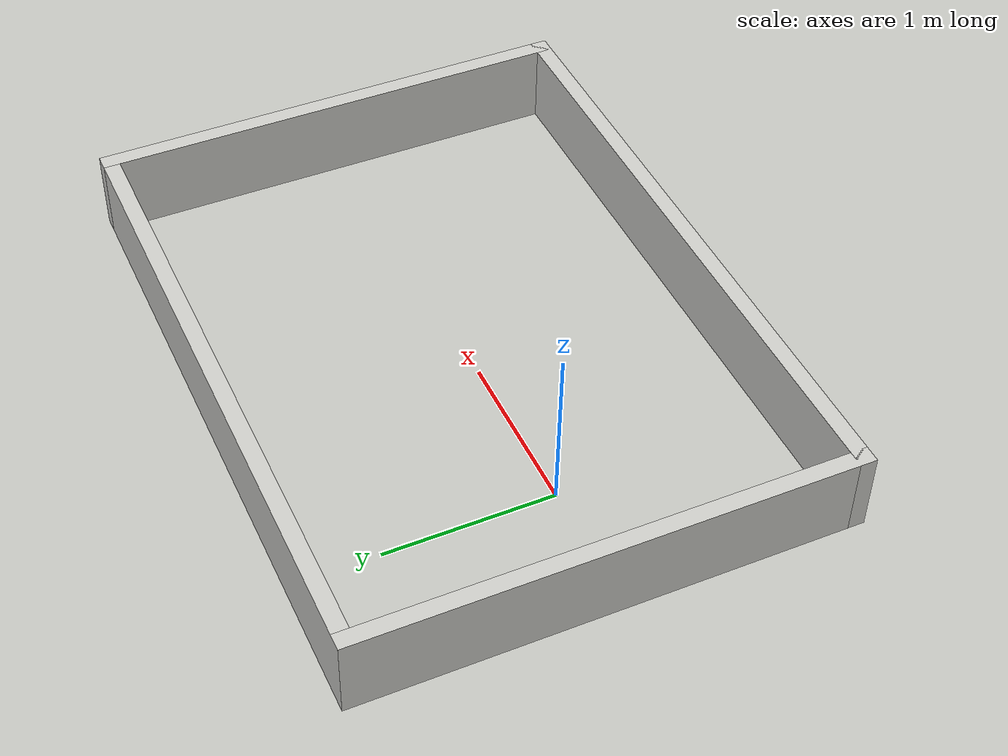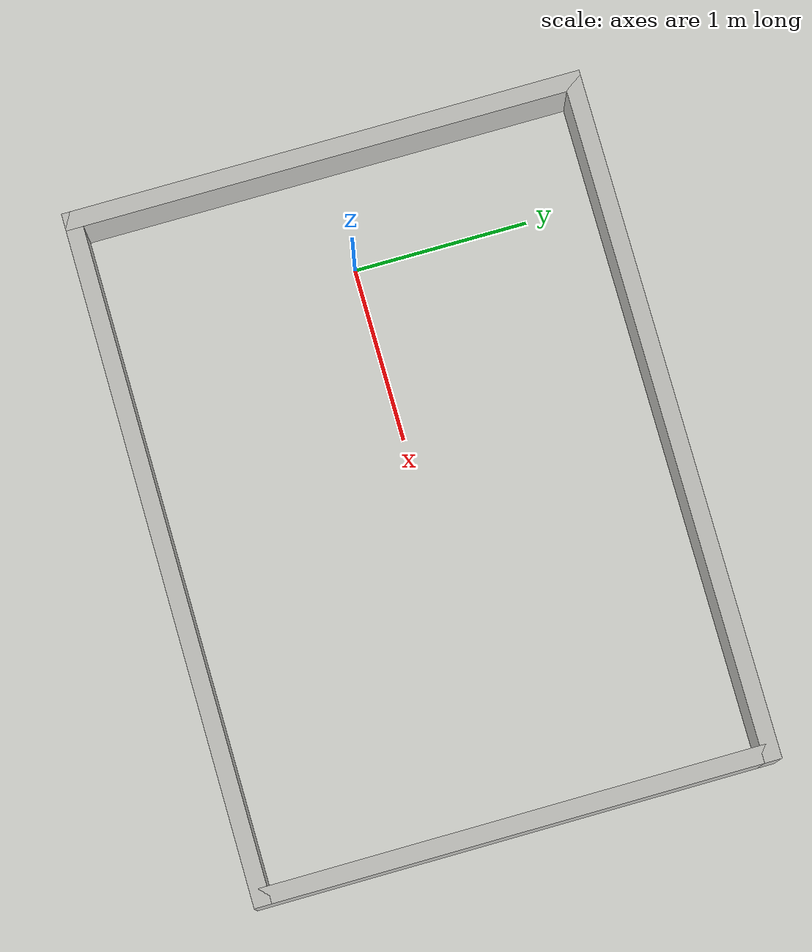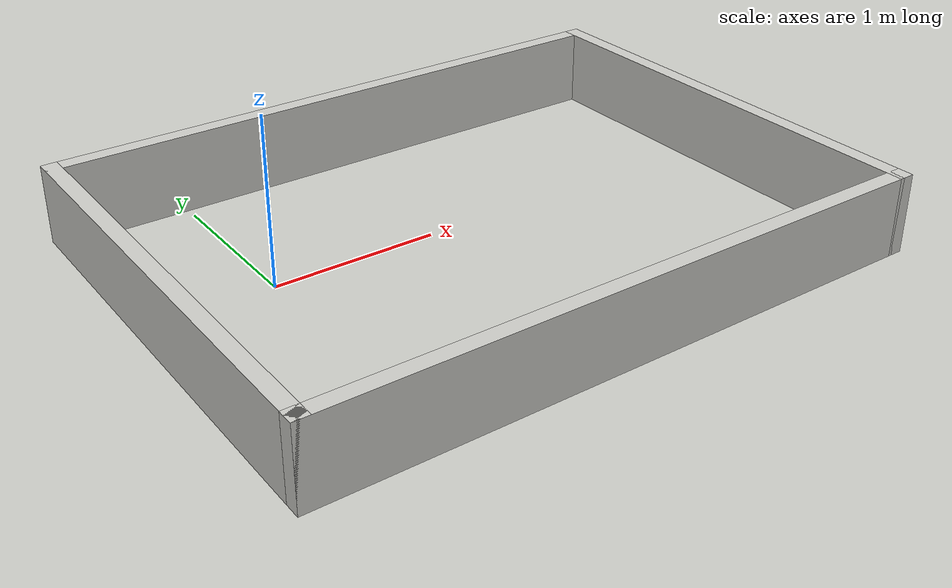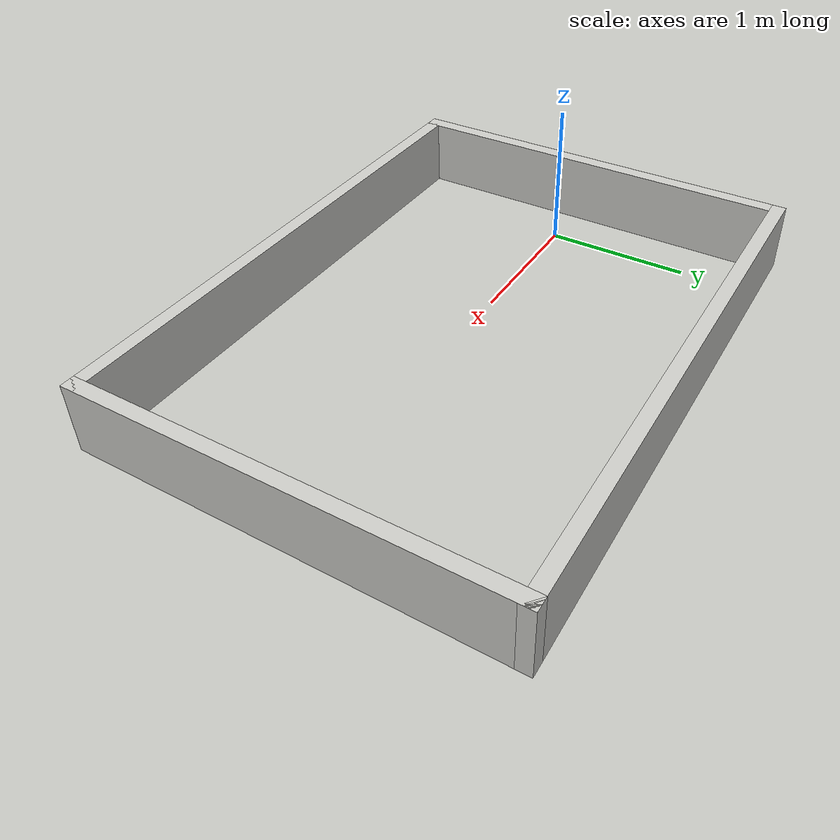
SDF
<?xml version="1.0" ?>
<sdf version="1.4">
  <world name="underwater">
    <include>
      <uri>model://sun</uri>
    </include>

    <!-- Testing Pond model -->

      <model name='testing_pond'>
      <pose frame=''>1.3 0 -0.3 0 0 0</pose>
      <link name='Wall_0'>
        <collision name='Wall_0_Collision'>
          <geometry>
            <box>
              <size>4 0.1 0.5</size>
            </box>
          </geometry>
          <pose frame=''>0 0 0.375 0 -0 0</pose>
          <max_contacts>10</max_contacts>
          <surface>
            <contact>
              <ode/>
            </contact>
            <bounce/>
            <friction>
              <torsional>
                <ode/>
              </torsional>
              <ode/>
            </friction>
          </surface>
        </collision>
        <visual name='Wall_0_Visual'>
          <pose frame=''>0 0 0.375 0 -0 0</pose>
          <geometry>
            <box>
              <size>4 0.1 0.5</size>
            </box>
          </geometry>
          <material>
            <script>
              <uri>file://media/materials/scripts/gazebo.material</uri>
              <name>Gazebo/CeilingTiled</name>
            </script>
            <ambient>1 1 1 1</ambient>
          </material>
          <meta>
            <layer>0</layer>
          </meta>
        </visual>
        <pose frame=''>0 -1.45 0 0 -0 0</pose>
        <self_collide>0</self_collide>
        <enable_wind>0</enable_wind>
        <kinematic>0</kinematic>
      </link>
      <link name='Wall_4'>
        <collision name='Wall_4_Collision'>
          <geometry>
            <box>
              <size>3 0.1 0.5</size>
            </box>
          </geometry>
          <pose frame=''>0 0 0.375 0 -0 0</pose>
          <max_contacts>10</max_contacts>
          <surface>
            <contact>
              <ode/>
            </contact>
            <bounce/>
            <friction>
              <torsional>
                <ode/>
              </torsional>
              <ode/>
            </friction>
          </surface>
        </collision>
        <visual name='Wall_4_Visual'>
          <pose frame=''>0 0 0.375 0 -0 0</pose>
          <geometry>
            <box>
              <size>3 0.1 0.5</size>
            </box>
          </geometry>
          <material>
            <script>
              <uri>file://media/materials/scripts/gazebo.material</uri>
              <name>Gazebo/CeilingTiled</name>
            </script>
            <ambient>1 1 1 1</ambient>
          </material>
          <meta>
            <layer>0</layer>
          </meta>
        </visual>
        <pose frame=''>1.95 -0 0 0 -0 1.5708</pose>
        <self_collide>0</self_collide>
        <enable_wind>0</enable_wind>
        <kinematic>0</kinematic>
      </link>
      <link name='Wall_6'>
        <collision name='Wall_6_Collision'>
          <geometry>
            <box>
              <size>4 0.1 0.5</size>
            </box>
          </geometry>
          <pose frame=''>0 0 0.375 0 -0 0</pose>
          <max_contacts>10</max_contacts>
          <surface>
            <contact>
              <ode/>
            </contact>
            <bounce/>
            <friction>
              <torsional>
                <ode/>
              </torsional>
              <ode/>
            </friction>
          </surface>
        </collision>
        <visual name='Wall_6_Visual'>
          <pose frame=''>0 0 0.375 0 -0 0</pose>
          <geometry>
            <box>
              <size>4 0.1 0.5</size>
            </box>
          </geometry>
          <material>
            <script>
              <uri>file://media/materials/scripts/gazebo.material</uri>
              <name>Gazebo/CeilingTiled</name>
            </script>
            <ambient>1 1 1 1</ambient>
          </material>
          <meta>
            <layer>0</layer>
          </meta>
        </visual>
        <pose frame=''>0 1.45 0 0 -0 3.14159</pose>
        <self_collide>0</self_collide>
        <enable_wind>0</enable_wind>
        <kinematic>0</kinematic>
      </link>
      <link name='Wall_8'>
        <collision name='Wall_8_Collision'>
          <geometry>
            <box>
              <size>3 0.1 0.5</size>
            </box>
          </geometry>
          <pose frame=''>0 0 0.375 0 -0 0</pose>
          <max_contacts>10</max_contacts>
          <surface>
            <contact>
              <ode/>
            </contact>
            <bounce/>
            <friction>
              <torsional>
                <ode/>
              </torsional>
              <ode/>
            </friction>
          </surface>
        </collision>
        <visual name='Wall_8_Visual'>
          <pose frame=''>0 0 0.375 0 -0 0</pose>
          <geometry>
            <box>
              <size>3 0.1 0.5</size>
            </box>
          </geometry>
          <material>
            <script>
              <uri>file://media/materials/scripts/gazebo.material</uri>
              <name>Gazebo/CeilingTiled</name>
            </script>
            <ambient>1 1 1 1</ambient>
          </material>
          <meta>
            <layer>0</layer>
          </meta>
        </visual>
        <pose frame=''>-1.95 -0 0 0 -0 1.5708</pose>
        <self_collide>0</self_collide>
        <enable_wind>0</enable_wind>
        <kinematic>0</kinematic>
      </link>
      <static>1</static>
    </model>

    <!-- end of model -->

    <!-- buoyancy plugin -->
    <plugin name="freefloating_gazebo_fluid" filename="libfreefloating_gazebo_fluid.so">
          <descriptionParam>robot_description</descriptionParam>
          <fluidTopic>current</fluidTopic>
          <alwaysOn>true</alwaysOn>
          <surface>0 0 0</surface>
          <updateRate>.001</updateRate>
    </plugin>

  </world>
</sdf>
